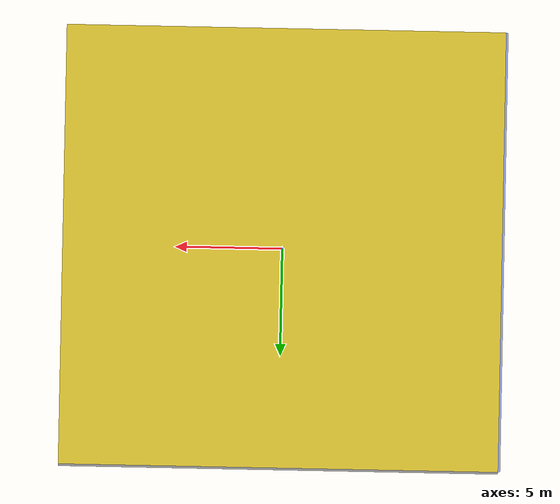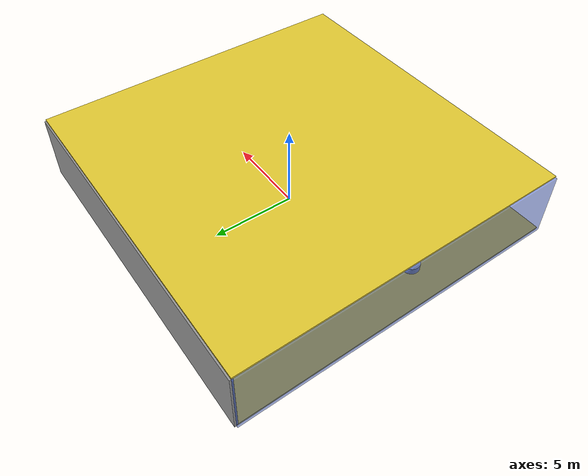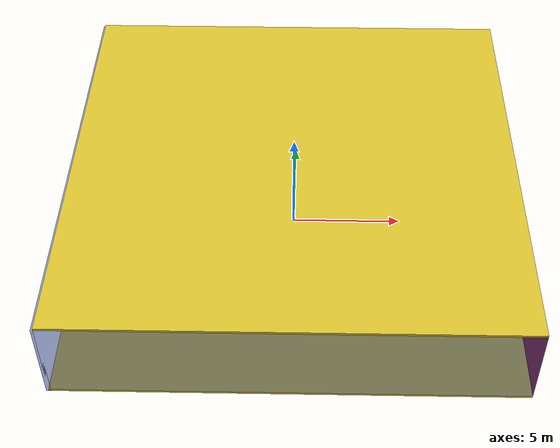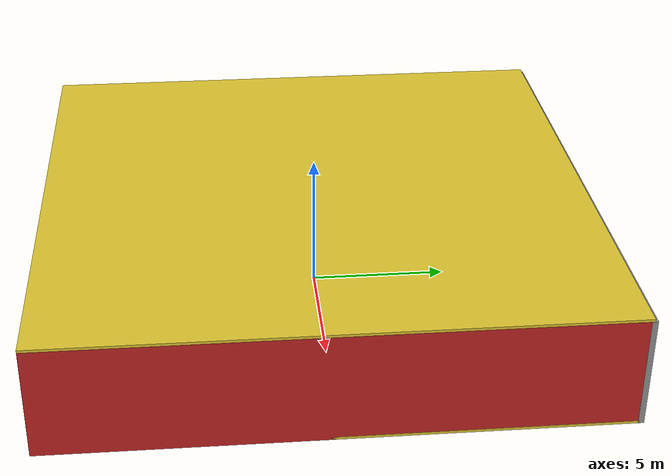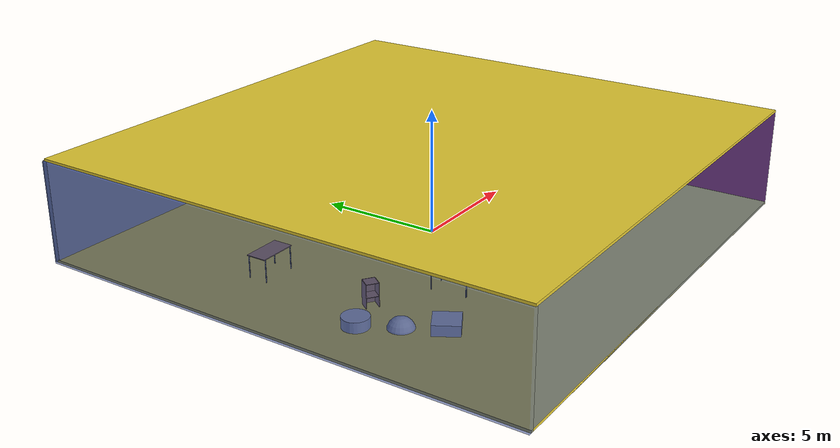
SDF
<sdf version="1.4">
 <world name="default">
  <physics type="ode">
   <max_step_size>0.001</max_step_size>
   <real_time_factor>1</real_time_factor>
   <real_time_update_rate>1000</real_time_update_rate>
   <gravity>0 0 -9.8</gravity>
  </physics>
  <scene><ambient>0.4 0.4 0.4 1</ambient><background>0.7 0.7 0.7 1</background><shadows>1</shadows></scene>
  <model name="Surrounding">
   <static>1</static>
   <link name="Ceiling">
    <collision name="Ceiling_Collision"><geometry><box><size>20 20 0.1</size></box></geometry></collision>
    <visual name="Ceiling_Visual">
     <geometry><box><size>20 20 0.1</size></box></geometry>
     <material>
      <script><uri>file://media/materials/scripts/gazebo.material</uri><name>Gazebo/ZincYellow</name></script>
     </material>
    </visual>
    <pose>0 0 4.05 0 0 0</pose>
   </link>
   <link name="Wall_South">
    <collision name="Wall_South_Collision">
     <geometry><box><size>20 0 4</size></box></geometry>
     <pose>0 0 2 0 -0 0</pose>
    </collision>
    <visual name="Wall_South_Visual">
     <pose>0 0 2 0 -0 0</pose>
     <geometry><box><size>20 0 4</size></box></geometry>
     <material>
      <script><uri>file://media/materials/scripts/gazebo.material</uri><name>Gazebo/BlueTransparent</name></script>
     </material>
    </visual>
    <velocity_decay><linear>0</linear><angular>0</angular></velocity_decay>
    <pose>0 -10 0 0 -0 0</pose>
   </link>
   <link name="Wall_East">
    <collision name="Wall_21_Collision">
     <geometry><box><size>20 0 4</size></box></geometry>
     <pose>0 0 2 0 -0 0</pose>
    </collision>
    <visual name="Wall_21_Visual">
     <pose>0 0 2 0 -0 0</pose>
     <geometry><box><size>20 0 4</size></box></geometry>
     <material>
      <script><uri>file://media/materials/scripts/gazebo.material</uri><name>Gazebo/RedGlow</name></script>
     </material>
    </visual>
    <velocity_decay><linear>0</linear><angular>0</angular></velocity_decay>
    <pose>10 0 0 0 -0 1.5708</pose>
   </link>
   <link name="Wall_North">
    <collision name="Wall_22_Collision">
     <geometry><box><size>20 0.2 4</size></box></geometry>
     <pose>0 0 2 0 -0 0</pose>
    </collision>
    <visual name="Wall_22_Visual">
     <pose>0 0 2 0 -0 0</pose>
     <geometry><box><size>20 0.2 4</size></box></geometry>
     <material>
      <script><uri>file://media/materials/scripts/gazebo.material</uri><name>Gazebo/GreyGradientSky</name></script>
     </material>
    </visual>
    <velocity_decay><linear>0</linear><angular>0</angular></velocity_decay>
    <pose>0 10 0 0 -0 0</pose>
   </link>
   <link name="Wall_West">
    <collision name="Wall_23_Collision">
     <geometry><box><size>20 0.2 4</size></box></geometry>
     <pose>0 0 2 0 -0 0</pose>
    </collision>
    <visual name="Wall_23_Visual">
     <pose>0 0 2 0 -0 0</pose>
     <geometry><box><size>20 0.2 4</size></box></geometry>
     <material>
      <script><uri>file://media/materials/scripts/gazebo.material</uri><name>Gazebo/BlueTransparent</name></script>
     </material>
    </visual>
    <velocity_decay><linear>0</linear><angular>0</angular></velocity_decay>
    <pose>-10 0 0 0 0 -1.5708</pose>
   </link>
   <link name="Ground_link">
    <collision name="collision">
     <pose>0 0 .05 0 -0 0</pose>
     <geometry><box><size>20 20 0.1</size></box></geometry>
    </collision>
    <visual name="visual">
     <pose>0 0 .05 0 -0 0</pose>
     <geometry><box><size>20 20 0.1</size></box></geometry>
     <material>
      <script><uri>file://media/materials/scripts/gazebo.material</uri><name>Gazebo/ZincYellow</name></script>
     </material>
    </visual>
   </link>
   <static>1</static>
  </model>
  <spherical_coordinates>
   <surface_model>EARTH_WGS84</surface_model>
   <latitude_deg>0</latitude_deg>
   <longitude_deg>0</longitude_deg>
   <elevation>0</elevation>
   <heading_deg>0</heading_deg>
  </spherical_coordinates>
  <light name="lightball_0" type="diffuse">
   <diffuse>0.8 0.8 0.8 1</diffuse>
   <specular>0.2 0.2 0.2 1</specular>
   <attenuation>
    <range>100</range>
    <constant>0.7</constant>
    <linear>0.01</linear>
    <quadratic>0.001</quadratic>
   </attenuation>
   <direction>-0.5 0.1 -0.9</direction>
   <pose>6.97126649851 3.40364605306 2.41035171581 0 0 0</pose>
  </light>
  <light name="lightball_1" type="diffuse">
   <diffuse>0.8 0.8 0.8 1</diffuse>
   <specular>0.2 0.2 0.2 1</specular>
   <attenuation>
    <range>100</range>
    <constant>0.7</constant>
    <linear>0.01</linear>
    <quadratic>0.001</quadratic>
   </attenuation>
   <direction>-0.5 0.1 -0.9</direction>
   <pose>1.15770751361 1.55010663776 1.54455530767 0 0 0</pose>
  </light>
  <light name="lightball_2" type="diffuse">
   <diffuse>0.8 0.8 0.8 1</diffuse>
   <specular>0.2 0.2 0.2 1</specular>
   <attenuation>
    <range>100</range>
    <constant>0.7</constant>
    <linear>0.01</linear>
    <quadratic>0.001</quadratic>
   </attenuation>
   <direction>-0.5 0.1 -0.9</direction>
   <pose>-7.63976533315 -8.52176620194 1.27959838106 0 0 0</pose>
  </light>
  <light name="lightball_3" type="diffuse">
   <diffuse>0.8 0.8 0.8 1</diffuse>
   <specular>0.2 0.2 0.2 1</specular>
   <attenuation>
    <range>100</range>
    <constant>0.7</constant>
    <linear>0.01</linear>
    <quadratic>0.001</quadratic>
   </attenuation>
   <direction>-0.5 0.1 -0.9</direction>
   <pose>-5.91046623424 -1.34539762654 1.14986366205 0 0 0</pose>
  </light>
  <light name="lightball_4" type="diffuse">
   <diffuse>0.8 0.8 0.8 1</diffuse>
   <specular>0.2 0.2 0.2 1</specular>
   <attenuation>
    <range>100</range>
    <constant>0.7</constant>
    <linear>0.01</linear>
    <quadratic>0.001</quadratic>
   </attenuation>
   <direction>-0.5 0.1 -0.9</direction>
   <pose>3.29811950806 -5.1509214946 0.631259526988 0 0 0</pose>
  </light>
  <light name="lightball_5" type="diffuse">
   <diffuse>0.8 0.8 0.8 1</diffuse>
   <specular>0.2 0.2 0.2 1</specular>
   <attenuation>
    <range>100</range>
    <constant>0.7</constant>
    <linear>0.01</linear>
    <quadratic>0.001</quadratic>
   </attenuation>
   <direction>-0.5 0.1 -0.9</direction>
   <pose>-0.822587638818 1.35974892229 1.99142155903 0 0 0</pose>
  </light>
  <include>
   <uri>model://textured_shapes</uri>
   <pose>-7.19113233631 -3.56850711105 0 0 0 0.522974022604</pose>
  </include>
  <include><uri>model://cabinet</uri><pose>-6.46594375442 -1.80197310497 0 0 0 0.964044149049</pose></include>
  <include><uri>model://table</uri><pose>-6.46026565542 2.69267332276 0 0 0 0.011289976898</pose></include>
  <include><uri>model://table</uri><pose>-3.86703143416 -3.48519664136 0 0 0 1.67516143504</pose></include>
  <include><uri>model://table</uri><pose>-2.62664059135 -3.83819499956 0 0 0 2.25440452933</pose></include>
  <include><uri>model://cabinet</uri><pose>-1.80270462753 0.72259234186 0 0 0 3.03167459588</pose></include>
  <include><uri>model://cabinet</uri><pose>0.627267129303 1.64430945726 0 0 0 0.414109312775</pose></include>
 </world>
</sdf>

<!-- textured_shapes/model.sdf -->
<sdf version="1.6">
  <model name="textured_shapes">
    <pose>0 0 0.5 0 0 0</pose>
    <link name="box">
      <pose>0 -1.5 0 0 0 0</pose>
      <collision name="collision">
        <geometry>
          <box>
            <size>1 1 1</size>
          </box>
        </geometry>
      </collision>
      <visual name="visual">
        <geometry>
          <box>
            <size>1 1 1</size>
          </box>
        </geometry>
        <material>
          <script>
            <uri>model://../model_source/models/textured_shapes/materials/scripts</uri>
            <uri>model://../model_source/models/textured_shapes/materials/textures</uri>
            <name>TexturedShape/Squares</name>
          </script>
        </material>
      </visual>
    </link>
    <link name="sphere">
      <collision name="collision">
        <geometry>
          <sphere>
            <radius>0.5</radius>
          </sphere>
        </geometry>
      </collision>
      <visual name="visual">
        <geometry>
          <sphere>
            <radius>0.5</radius>
          </sphere>
        </geometry>
        <material>
          <script>
            <uri>model://../model_source/models/textured_shapes/materials/scripts</uri>
            <uri>model://../model_source/models/textured_shapes/materials/textures</uri>
            <name>TexturedShape/Squares</name>
          </script>
        </material>
      </visual>
    </link>
    <link name="cylinder">
      <pose>0 1.5 0 0 0 0</pose>
      <collision name="collision">
        <geometry>
          <cylinder>
            <radius>0.5</radius>
            <length>1</length>
          </cylinder>
        </geometry>
      </collision>
      <visual name="visual">
        <geometry>
          <cylinder>
            <radius>0.5</radius>
            <length>1</length>
          </cylinder>
        </geometry>
        <material>
          <script>
            <uri>model://../model_source/models/textured_shapes/materials/scripts</uri>
            <uri>model://../model_source/models/textured_shapes/materials/textures</uri>
            <name>TexturedShape/Squares</name>
          </script>
        </material>
      </visual>
    </link>
  </model>
</sdf>

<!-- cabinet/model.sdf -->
<sdf version="1.5">
  <model name="cabinet">
    <static>true</static>
    <link name="cabinet_bottom_plate">
      <inertial>
        <pose>0 0 -1 0 0 0</pose>
        <inertia>
          <ixx>2.050000</ixx>
          <ixy>0</ixy>
          <ixz>0</ixz>
          <iyy>2.050000</iyy>
          <iyz>0</iyz>
          <izz>2.050000</izz>
        </inertia>
        <mass>25.000000</mass>
      </inertial>
      <collision name="cabinet_bottom_plate_geom">
        <pose>0 0 0.010000 0 0 0</pose>
        <geometry>
          <box>
            <size>0.450000 0.450000 0.020000</size>
          </box>
        </geometry>
      </collision>
      <visual name="cabinet_bottom_plate_geom_visual">
        <pose>0 0 0.010000 0 0 0</pose>
        <geometry>
          <box>
            <size>0.450000 0.450000 0.020000</size>
          </box>
        </geometry>
        <material>
          <script>
            <uri>model://media/materials/scripts/gazebo.material</uri>
            <name>Gazebo/Wood</name>
          </script>
        </material>
      </visual>
      <collision name="cabinet_bottom_plate_geom_cabinet_back_plate">
        <pose>0.235000 0 0.510000 0 0 0</pose>
        <geometry>
          <box>
            <size>0.020000 0.450000 1.020000</size>
          </box>
        </geometry>
      </collision>
      <visual name="cabinet_bottom_plate_geom_cabinet_back_plate_visual">
        <pose>0.235000 0 0.510000 0 0 0</pose>
        <geometry>
          <box>
            <size>0.020000 0.450000 1.020000</size>
          </box>
        </geometry>
        <material>
          <script>
            <uri>model://media/materials/scripts/gazebo.material</uri>
            <name>Gazebo/Wood</name>
          </script>
        </material>
      </visual>
      <collision name="cabinet_bottom_plate_geom_cabinet_left_plate">
        <pose>0 0.235000 0.510000 0 0 0</pose>
        <geometry>
          <box>
            <size>0.450000 0.020000 1.020000</size>
          </box>
        </geometry>
      </collision>
      <visual name="cabinet_bottom_plate_geom_cabinet_left_plate_visual">
        <pose>0 0.235000 0.510000 0 0 0</pose>
        <geometry>
          <box>
            <size>0.450000 0.020000 1.020000</size>
          </box>
        </geometry>
        <material>
          <script>
            <uri>model://media/materials/scripts/gazebo.material</uri>
            <name>Gazebo/Wood</name>
          </script>
        </material>
      </visual>
      <collision name="cabinet_bottom_plate_geom_cabinet_middle_plate">
        <pose>0 0 0.510000 0 0 0</pose>
        <geometry>
          <box>
            <size>0.450000 0.450000 0.020000</size>
          </box>
        </geometry>
      </collision>
      <visual name="cabinet_bottom_plate_geom_cabinet_middle_plate_visual">
        <pose>0 0 0.510000 0 0 0</pose>
        <geometry>
          <box>
            <size>0.450000 0.450000 0.020000</size>
          </box>
        </geometry>
        <material>
          <script>
            <uri>model://media/materials/scripts/gazebo.material</uri>
            <name>Gazebo/Wood</name>
          </script>
        </material>
      </visual>
      <collision name="cabinet_bottom_plate_geom_cabinet_right_plate">
        <pose>0 -0.235000 0.510000 0 0 0</pose>
        <geometry>
          <box>
            <size>0.450000 0.020000 1.020000</size>
          </box>
        </geometry>
      </collision>
      <visual name="cabinet_bottom_plate_geom_cabinet_right_plate_visual">
        <pose>0 -0.235000 0.510000 0 0 0</pose>
        <geometry>
          <box>
            <size>0.450000 0.020000 1.020000</size>
          </box>
        </geometry>
        <material>
          <script>
            <uri>model://media/materials/scripts/gazebo.material</uri>
            <name>Gazebo/Wood</name>
          </script>
        </material>
      </visual>
      <collision name="cabinet_bottom_plate_geom_cabinet_top_plate">
        <pose>0 0 1.010000 0 0 0</pose>
        <geometry>
          <box>
            <size>0.450000 0.450000 0.020000</size>
          </box>
        </geometry>
      </collision>
      <visual name="cabinet_bottom_plate_geom_cabinet_top_plate_visual">
        <pose>0 0 1.010000 0 0 0</pose>
        <geometry>
          <box>
            <size>0.450000 0.450000 0.020000</size>
          </box>
        </geometry>
        <material>
          <script>
            <uri>model://media/materials/scripts/gazebo.material</uri>
            <name>Gazebo/Wood</name>
          </script>
        </material>
      </visual>
    </link>
  </model>
</sdf>

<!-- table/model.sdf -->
<sdf version="1.5">
  <model name="table">
    <static>true</static>
    <link name="link">
      <collision name="surface">
        <pose>0 0 1.0 0 0 0</pose>
        <geometry>
          <box>
            <size>1.5 0.8 0.03</size>
          </box>
        </geometry>
        <surface>
          <friction>
            <ode>
              <mu>0.6</mu>
              <mu2>0.6</mu2>
            </ode>
          </friction>
        </surface>
      </collision>
      <visual name="visual1">
        <pose>0 0 1.0 0 0 0</pose>
        <geometry>
          <box>
            <size>1.5 0.8 0.03</size>
          </box>
        </geometry>
        <material>
          <script>
            <uri>model://media/materials/scripts/gazebo.material</uri>
            <name>Gazebo/Wood</name>
          </script>
        </material>
      </visual>
      <collision name="front_left_leg">
        <pose>0.68 0.38 0.5 0 0 0</pose>
        <geometry>
          <cylinder>
            <radius>0.02</radius>
            <length>1.0</length>
          </cylinder>
        </geometry>
      </collision>
      <visual name="front_left_leg">
        <pose>0.68 0.38 0.5 0 0 0</pose>
        <geometry>
          <cylinder>
            <radius>0.02</radius>
            <length>1.0</length>
          </cylinder>
        </geometry>
        <material>
          <script>
            <uri>model://media/materials/scripts/gazebo.material</uri>
            <name>Gazebo/Grey</name>
          </script>
        </material>
      </visual>
      <collision name="front_right_leg">
        <pose>0.68 -0.38 0.5 0 0 0</pose>
        <geometry>
          <cylinder>
            <radius>0.02</radius>
            <length>1.0</length>
          </cylinder>
        </geometry>
      </collision>
      <visual name="front_right_leg">
        <pose>0.68 -0.38 0.5 0 0 0</pose>
        <geometry>
          <cylinder>
            <radius>0.02</radius>
            <length>1.0</length>
          </cylinder>
        </geometry>
        <material>
          <script>
            <uri>model://media/materials/scripts/gazebo.material</uri>
            <name>Gazebo/Grey</name>
          </script>
        </material>
      </visual>
      <collision name="back_right_leg">
        <pose>-0.68 -0.38 0.5 0 0 0</pose>
        <geometry>
          <cylinder>
            <radius>0.02</radius>
            <length>1.0</length>
          </cylinder>
        </geometry>
      </collision>
      <visual name="back_right_leg">
        <pose>-0.68 -0.38 0.5 0 0 0</pose>
        <geometry>
          <cylinder>
            <radius>0.02</radius>
            <length>1.0</length>
          </cylinder>
        </geometry>
        <material>
          <script>
            <uri>model://media/materials/scripts/gazebo.material</uri>
            <name>Gazebo/Grey</name>
          </script>
        </material>
      </visual>
      <collision name="back_left_leg">
        <pose>-0.68 0.38 0.5 0 0 0</pose>
        <geometry>
          <cylinder>
            <radius>0.02</radius>
            <length>1.0</length>
          </cylinder>
        </geometry>
      </collision>
      <visual name="back_left_leg">
        <pose>-0.68 0.38 0.5 0 0 0</pose>
        <geometry>
          <cylinder>
            <radius>0.02</radius>
            <length>1.0</length>
          </cylinder>
        </geometry>
        <material>
          <script>
            <uri>model://media/materials/scripts/gazebo.material</uri>
            <name>Gazebo/Grey</name>
          </script>
        </material>
      </visual>
    </link>
  </model>
</sdf>
